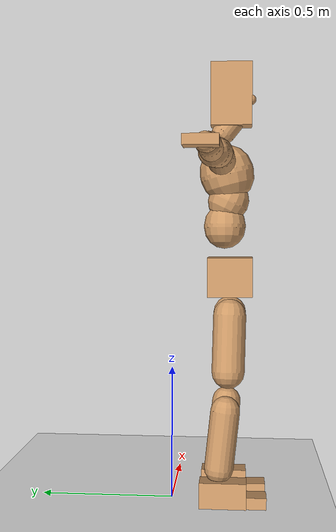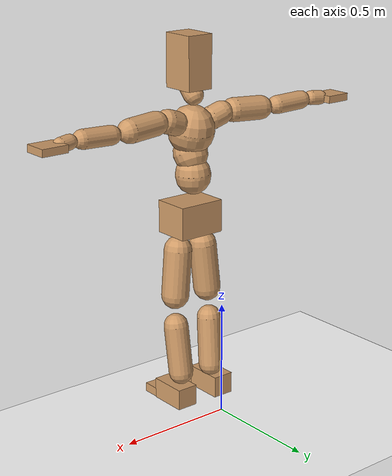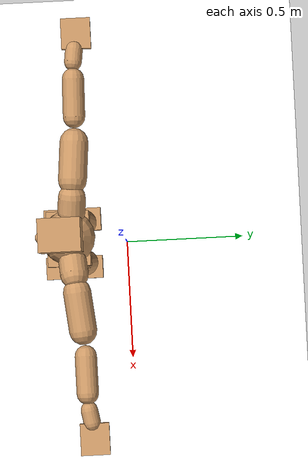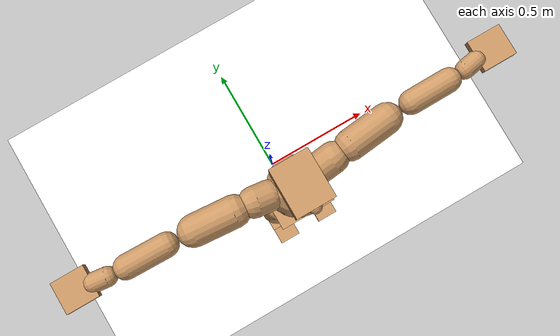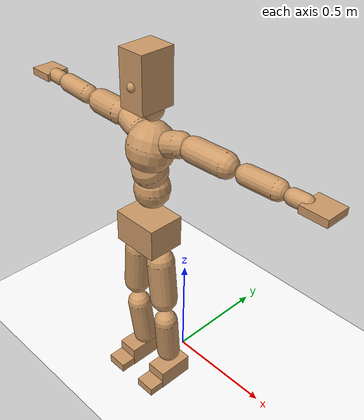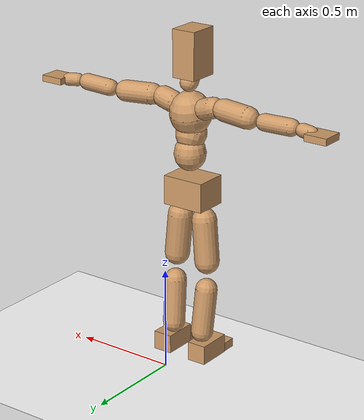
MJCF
<mujoco model="humanoid">
  <option integrator="implicitfast" />

  <visual>
    <global offwidth="1280" offheight="960" />
    <headlight active="1" ambient="0.34 0.34 0.34" diffuse="0.5 0.5 0.5" />
  </visual>

  <default>
    <joint damping="2" stiffness="2" armature="0.01" limited="true" solimplimit="0 .99 .01" />
    <geom condim="1" friction="0.7 0.005 0.0001" solimp=".99 .99 .003" solref="0.015 1" margin="0.001" rgba="0.8 0.6 .4 1" />
    <default class="smplcontact">
      <geom condim="3" friction="1. 0.005 0.0001" solref="0.015 1" solimp="0.98 0.98 0.001" priority="1" />
    </default>
    <default class="stiff_medium">
      <joint stiffness="10" />
    </default>
    <default class="stiff_medium_higher">
      <joint stiffness="50" />
    </default>
    <default class="stiff_high">
      <joint stiffness="100" />
    </default>
  </default>

  <asset>
    <texture type="skybox" builtin="gradient" rgb1="0.99 0.99 0.99" rgb2="0.608 0.828 0.892" width="100" />
    <texture builtin="flat" height="1278" mark="cross" markrgb="1 1 1" name="texgeom" random="0.01" rgb1="0.8 0.6 0.4" rgb2="0.8 0.6 0.4" type="cube" width="127" />
    <texture name="texplane" type="2d" builtin="checker" markrgb="1 1 1" rgb1="0.756 0.772 0.76" rgb2="0.6 0.6 0.6" width="100" height="100" />
    <material name="MatPlane" reflectance="0.5" texture="texplane" texrepeat="1 1" texuniform="true" />
    <material name="geom" texture="texgeom" texuniform="true" />
  </asset>

  <worldbody>
    <light name="tracking_light" pos="0 0 7" dir="0 0 -1" directional="true" cutoff="100" exponent="1" diffuse="1 1 1" specular="0.1 0.1 0.1" mode="trackcom" />
    <camera name="back" pos="0 3 2.4" xyaxes="-1 0 0 0 -1 2" mode="trackcom" />
    <camera name="side" pos="-3 0 2.4" xyaxes="0 -1 0 1 0 2" mode="trackcom" />
    <camera name="front_side" pos="-2.8 -2.8 0.8" xyaxes="0.5 -0.5 0 0.1 0.1 1" mode="trackcom" />
    <geom condim="3" name="floor" pos="0 0 0" rgba="1 1 1 1" size="100 100 .2" type="plane" material="MatPlane" />
    <body name="Pelvis" pos="-0.0018 -0.2233 0.858922" euler="90 0 0">
      <site name="Pelvis" size="0.01" />
      <freejoint name="Pelvis" />
      <geom type="box" pos="-0.0000 -0.0121 -0.0055" size="0.1069 0.0722 0.083" quat="1.0000 0.0000 0.0000 0.0000" density="3165.830099" name="Pelvis" />
      <body name="L_Hip" pos="0.0634188 -0.0834025 -0.006205">
        <joint name="L_Hip_x" type="hinge" pos="0 0 0" axis="1 0 0" stiffness="8.591054285714286" range="-160.0 22.92" class="stiff_medium" damping="12.391003329679648" armature="0.007942989088671637"/>
        <joint name="L_Hip_y" type="hinge" pos="0 0 0" axis="0 1 0" stiffness="8.606951530612246" range="-70.0 70.0" class="stiff_medium" damping="8.72311868928714" armature="0.008840853744412552"/>
        <joint name="L_Hip_z" type="hinge" pos="0 0 0" axis="0 0 1" stiffness="8.60559030612245" range="-28.65 90.0" class="stiff_medium" damping="8.26695330156144" armature="0.007941641939609336"/>
        <geom type="capsule" density="2040.816327" fromto="0.00629625 -0.0684375 -0.00082125 0.0250025 -0.273933 -0.003285" size="0.0615" name="L_Hip" />
        <body name="L_Knee" pos="0.0312987 -0.34237 -0.00410625">
          <joint name="L_Knee_x" type="hinge" pos="0 0 0" axis="1 0 0" range="-5.16 171.89" damping="6.704081834164532" armature="0.008088503736349381" stiffness="1.7364426530612245"/>
          <joint name="L_Knee_y" type="hinge" pos="0 0 0" axis="0 1 0" range="-4.58 6.88" damping="7.0499493862572375" armature="0.009000694625865247" stiffness="1.7256232857142857"/>
          <joint name="L_Knee_z" type="hinge" pos="0 0 0" axis="0 0 1" range="-6.88 4.58" damping="6.710512520158358" armature="0.008081817979239427" stiffness="1.7412147551020407"/>
          <geom type="capsule" density="1234.567901" fromto="-0.00246375 -0.072635 -0.00793875 -0.00994625 -0.29054 -0.0319375" size="0.0541" name="L_Knee" />
          <body name="L_Ankle" pos="-0.01241 -0.363175 -0.0398763">
            <joint name="L_Ankle_x" type="hinge" pos="0 0 0" axis="1 0 0" range="-45.84 45.84" class="stiff_medium" damping="5.4068680597084295" armature="0.008899315268365396" stiffness="9.12499112244898"/>
            <joint name="L_Ankle_y" type="hinge" pos="0 0 0" axis="0 1 0" range="-74.48 22.92" class="stiff_medium" damping="2.7096473304504354" armature="0.008940262758152785" stiffness="9.124997346938775"/>
            <joint name="L_Ankle_z" type="hinge" pos="0 0 0" axis="0 0 1" range="-4.58 4.58" class="stiff_medium" damping="5.499950559539303" armature="0.009208348977162611" stiffness="9.125008979591838"/>
            <geom type="box" pos="0.0212613 -0.0218088 0.0220825" size="0.0483 0.0464 0.085" quat="1.0000 0.0000 0.0000 0.0000" density="449.071558" name="L_Ankle" class="smplcontact" />
            <body name="L_Toe" pos="0.02409 -0.0509175 0.108861">
              <joint name="L_Toe_x" type="hinge" pos="0 0 0" axis="1 0 0" range="-91.67 22.92" armature="0.009363772393021141" damping="1.848721997777341" stiffness="1.824997918367347"/>
              <joint name="L_Toe_y" type="hinge" pos="0 0 0" axis="0 1 0" range="-4.58 4.58" armature="0.009551726235366816" damping="1.8671839712015337" stiffness="1.8249978571428571"/>
              <joint name="L_Toe_z" type="hinge" pos="0 0 0" axis="0 0 1" range="-4.58 4.58" armature="0.009931759686637008" damping="1.9039675117035237" stiffness="1.825"/>
              <geom type="box" pos="-0.0027375 0.00501875 0.02263" size="0.0478 0.02 0.0496" quat="1.0000 0.0000 0.0000 0.0000" density="423.206892" name="L_Toe" class="smplcontact" />
            </body>
          </body>
        </body>
      </body>
      <body name="R_Hip" pos="-0.0617762 -0.0825812 -0.00392375">
        <joint name="R_Hip_x" type="hinge" pos="0 0 0" axis="1 0 0" stiffness="8.591054285714286" range="-160.0 22.92" class="stiff_medium" damping="12.391003329679648" armature="0.007942989088671637"/>
        <joint name="R_Hip_y" type="hinge" pos="0 0 0" axis="0 1 0" stiffness="8.606951530612246" range="-70.0 70.0" class="stiff_medium" damping="8.72311868928714" armature="0.008840853744412552"/>
        <joint name="R_Hip_z" type="hinge" pos="0 0 0" axis="0 0 1" stiffness="8.60559030612245" range="-90.0 28.65" class="stiff_medium" damping="8.26695330156144" armature="0.007941641939609336"/>
        <geom type="capsule" density="2040.816327" fromto="-0.00702625 -0.0698063 -0.0016425 -0.0279225 -0.279316 -0.00647875" size="0.0606" name="R_Hip" />
        <body name="R_Knee" pos="-0.0349488 -0.349123 -0.00812125">
          <joint name="R_Knee_x" type="hinge" pos="0 0 0" axis="1 0 0" range="-5.16 171.89" damping="6.704081834164532" armature="0.008088503736349381" stiffness="1.7364426530612245"/>
          <joint name="R_Knee_y" type="hinge" pos="0 0 0" axis="0 1 0" range="-6.88 4.58" damping="7.0499493862572375" armature="0.009000694625865247" stiffness="1.7256232857142857"/>
          <joint name="R_Knee_z" type="hinge" pos="0 0 0" axis="0 0 1" range="-4.58 6.88" damping="6.710512520158358" armature="0.008081817979239427" stiffness="1.7412147551020407"/>
          <geom type="capsule" density="1234.567901" fromto="0.00292 -0.0727262 -0.00775625 0.0114975 -0.290814 -0.0308425" size="0.0541" name="R_Knee" />
          <body name="R_Ankle" pos="0.0144175 -0.36354 -0.0385987">
            <joint name="R_Ankle_x" type="hinge" pos="0 0 0" axis="1 0 0" range="-45.84 45.84" class="stiff_medium" damping="5.4068680597084295" armature="0.008899315268365396" stiffness="9.12499112244898"/>
            <joint name="R_Ankle_y" type="hinge" pos="0 0 0" axis="0 1 0" range="-22.92 74.48" class="stiff_medium" damping="2.7096473304504354" armature="0.008940262758152785" stiffness="9.124997346938775"/>
            <joint name="R_Ankle_z" type="hinge" pos="0 0 0" axis="0 0 1" range="-4.58 4.58" class="stiff_medium" damping="5.499950559539303" armature="0.009208348977162611" stiffness="9.125008979591838"/>
            <geom type="box" pos="-0.019345 -0.0158775 0.02336" size="0.0483 0.0478 0.0865" quat="1.0000 0.0000 0.0000 0.0000" density="434.700981" name="R_Ankle" class="smplcontact" />
            <body name="R_Toe" pos="-0.0231775 -0.0438912 0.112511">
              <joint name="R_Toe_x" type="hinge" pos="0 0 0" axis="1 0 0" range="-91.67 22.92" armature="0.009363772393021141" damping="1.848721997777341" stiffness="1.824997918367347"/>
              <joint name="R_Toe_y" type="hinge" pos="0 0 0" axis="0 1 0" range="-4.58 4.58" armature="0.009551726235366816" damping="1.8671839712015337" stiffness="1.8249978571428571"/>
              <joint name="R_Toe_z" type="hinge" pos="0 0 0" axis="0 0 1" range="-4.58 4.58" armature="0.009931759686637008" damping="1.9039675117035237" stiffness="1.825"/>
              <geom type="box" pos="0.0038325 0.00410625 0.0207137" size="0.0479 0.0216 0.0493" quat="1.0000 0.0000 0.0000 0.0000" density="407.384095" name="R_Toe" class="smplcontact" />
            </body>
          </body>
        </body>
      </body>
      <body name="Torso" pos="-0.0025 0.109 -0.0267">
        <joint name="Torso_x" type="hinge" pos="0 0 0" axis="1 0 0" range="-25.78 57.3" class="stiff_medium" damping="14.551725924853843" armature="0.00965213989109556" stiffness="9.750410204081632"/>
        <joint name="Torso_y" type="hinge" pos="0 0 0" axis="0 1 0" range="-57.3 57.3" class="stiff_high" damping="17.876151131723613" armature="0.008163943773499173" stiffness="97.8561306122449"/>
        <joint name="Torso_z" type="hinge" pos="0 0 0" axis="0 0 1" range="-34.38 34.38" class="stiff_high" damping="18.981013554033048" armature="0.0091436765196932" stiffness="98.50492708333333"/>
        <geom type="capsule" density="2040.816327" fromto="0.0025 0.0608 0.0005 0.003 0.0743 0.0006" size="0.0769" name="Torso" />
        <body name="Spine" pos="0.0055 0.1352 0.0011">
          <joint name="Spine_x" type="hinge" pos="0 0 0" axis="1 0 0" stiffness="9.702760612244898" range="-25.78 57.3" class="stiff_medium" damping="14.47113123031982" armature="0.009592396659237935"/>
          <joint name="Spine_y" type="hinge" pos="0 0 0" axis="0 1 0" stiffness="9.69631448979592" range="-57.3 57.3" class="stiff_high" damping="7.112167078751657" armature="0.008151119010428955"/>
          <joint name="Spine_z" type="hinge" pos="0 0 0" axis="0 0 1" stiffness="19.2891093877551" range="-34.38 34.38" class="stiff_high" damping="11.05051394417664" armature="0.008792660031315775"/>
          <geom type="capsule" density="2040.816327" fromto="0.0007 0.0238 0.0114 0.0008 0.0291 0.014" size="0.0755" name="Spine" />
          <body name="Chest" pos="0.0015 0.0529 0.0254">
            <joint name="Chest_x" type="hinge" pos="0 0 0" axis="1 0 0" stiffness="9.558727142857142" range="-25.78 57.3" class="stiff_medium" damping="14.33813483844185" armature="0.009558785975155849"/>
            <joint name="Chest_y" type="hinge" pos="0 0 0" axis="0 1 0" stiffness="9.197509361702128" range="-57.3 57.3" class="stiff_high" damping="6.925083199306545" armature="0.00814703868313777"/>
            <joint name="Chest_z" type="hinge" pos="0 0 0" axis="0 0 1" stiffness="19.248790204081633" range="-34.38 34.38" class="stiff_high" damping="10.94210510311205" armature="0.008639046836633758"/>
            <geom type="capsule" density="2040.816327" fromto="-0.0009 0.0682 -0.0173 -0.001 0.0833 -0.0212" size="0.1002" name="Chest" />
            <body name="Neck" pos="-0.0028 0.2139 -0.0429">
              <joint name="Neck_x" type="hinge" pos="0 0 0" axis="1 0 0" range="-28.65 57.3" class="stiff_medium_higher" damping="10.000000000000002" armature="0.010000000000000005" stiffness="50.0"/>
              <joint name="Neck_y" type="hinge" pos="0 0 0" axis="0 1 0" range="-40.11 40.11" class="stiff_medium_higher" damping="10.0" armature="0.01" stiffness="50.0"/>
              <joint name="Neck_z" type="hinge" pos="0 0 0" axis="0 0 1" range="-40.11 40.11" class="stiff_medium_higher" damping="10.000000000000002" armature="0.010000000000000005" stiffness="50.0"/>
              <geom type="capsule" density="1000" fromto="0.001 0.013 0.0103 0.0041 0.052 0.0411" size="0.0436" name="Neck" />
              <body name="Head" pos="0.0052 0.065 0.0513">
                <joint name="Head_x" type="hinge" pos="0 0 0" axis="1 0 0" range="-28.65 57.3" class="stiff_medium_higher" damping="2.000000000000001" armature="0.010000000000000009" stiffness="50.0"/>
                <joint name="Head_y" type="hinge" pos="0 0 0" axis="0 1 0" range="-40.11 40.11" class="stiff_medium_higher" damping="2.0" armature="0.01" stiffness="50.0"/>
                <joint name="Head_z" type="hinge" pos="0 0 0" axis="0 0 1" range="-40.11 40.11" class="stiff_medium_higher" damping="2.000000000000001" armature="0.010000000000000009" stiffness="50.0"/>
                <geom type="box" pos="-0.0042 0.0876 -0.0116" size="0.0606 0.1154 0.076" quat="1.0000 0.0000 0.0000 0.0000" density="1018.069894" name="Head" />
                <geom type="capsule" name="nose" size="0.02 0.01" pos="0 0.07 0.05" quat="1 0 0 0" mass="0" contype="0" conaffinity="0" />
              </body>
            </body>
            <body name="L_Thorax" pos="0.072496 0.111964 -0.031372">
              <joint name="L_Thorax_x" type="hinge" pos="0 0 0" axis="1 0 0" range="-10.89 4.58" class="stiff_medium_higher" damping="17.469003944602285" armature="0.008717658325447878" stiffness="43.75689081632653"/>
              <joint name="L_Thorax_y" type="hinge" pos="0 0 0" axis="0 1 0" range="-28.65 17.19" class="stiff_medium_higher" damping="16.817808145227552" armature="0.008097179599515869" stiffness="43.66314642857143"/>
              <joint name="L_Thorax_z" type="hinge" pos="0 0 0" axis="0 0 1" range="-31.51 40.11" class="stiff_medium_higher" damping="16.81742543386893" armature="0.008096619118020924" stiffness="43.66418163265307"/>
              <geom type="capsule" density="1000" fromto="0.016744 0.005612 -0.001656 0.066976 0.022448 -0.006532" size="0.0521" name="L_Thorax" />
              <body name="L_Shoulder" pos="0.08372 0.02806 -0.008188">
                <joint name="L_Shoulder_x" type="hinge" pos="0 0 0" axis="1 0 0" range="-97.4 97.4" class="stiff_medium" damping="5.316794865466252" armature="0.008958533231677692" stiffness="8.76517112244898"/>
                <joint name="L_Shoulder_y" type="hinge" pos="0 0 0" axis="0 1 0" range="-108.86 80.21" class="stiff_medium" damping="5.053913282584509" armature="0.008118231162203391" stiffness="8.739602040816328"/>
                <joint name="L_Shoulder_z" type="hinge" pos="0 0 0" axis="0 0 1" range="-97.4 85.94" class="stiff_medium" damping="5.054120112574888" armature="0.008117495029659342" stiffness="8.74111"/>
                <geom type="capsule" density="1000" fromto="0.047748 -0.002392 -0.00506 0.191084 -0.009384 -0.02024" size="0.0517" name="L_Shoulder" />
                <body name="L_Elbow" pos="0.238832 -0.011776 -0.0253">
                  <joint name="L_Elbow_x" type="hinge" pos="0 0 0" axis="1 0 0" range="-17.19 4.58" damping="4.539717898705552" armature="0.009348133790537913" stiffness="1.7636922244897963"/>
                  <joint name="L_Elbow_y" type="hinge" pos="0 0 0" axis="0 1 0" range="-180.0 17.19" damping="4.256952797329135" armature="0.00822100310712562" stiffness="1.7634487551020408"/>
                  <joint name="L_Elbow_z" type="hinge" pos="0 0 0" axis="0 0 1" range="-100.84 4.58" damping="4.2564525860911075" armature="0.008217139907945958" stiffness="1.7638632244897958"/>
                  <geom type="capsule" density="1000" fromto="0.045816 0.001656 -0.000184 0.183448 0.006624 -0.000828" size="0.0405" name="L_Elbow" />
                  <body name="L_Wrist" pos="0.229264 0.00828 -0.001104">
                    <joint name="L_Wrist_x" type="hinge" pos="0 0 0" axis="1 0 0" range="-180.0 22.92" armature="0.00947286048345945" damping="1.8535160665326487" stiffness="1.8133497346938778"/>
                    <joint name="L_Wrist_y" type="hinge" pos="0 0 0" axis="0 1 0" range="-17.19 17.19" armature="0.00857958989860997" damping="1.7620580177924448" stiffness="1.8094387346938776"/>
                    <joint name="L_Wrist_z" type="hinge" pos="0 0 0" axis="0 0 1" range="-22.92 22.92" armature="0.00852949768933052" damping="1.7576722307633488" stiffness="1.8110161836734693"/>
                    <geom type="capsule" density="1000" fromto="0.015456 -0.001472 -0.00276 0.061824 -0.00598 -0.01104" size="0.0318" name="L_Wrist" class="smplcontact" />
                    <body name="L_Hand" pos="0.07728 -0.007544 -0.013708">
                      <joint name="L_Hand_x" type="hinge" pos="0 0 0" axis="1 0 0" range="-17.19 17.19" armature="0.009933082377440275" damping="1.9119033225814588" stiffness="1.8400000000000003"/>
                      <joint name="L_Hand_y" type="hinge" pos="0 0 0" axis="0 1 0" range="-51.57 51.57" armature="0.009190723677921295" damping="1.8390721338422364" stiffness="1.8400000000000003"/>
                      <joint name="L_Hand_z" type="hinge" pos="0 0 0" axis="0 0 1" range="-91.67 91.67" armature="0.008992837823657156" damping="1.8191658305679101" stiffness="1.8400000000000003"/>
                      <geom type="box" pos="0.045356 0.00092 -0.005336" size="0.0585 0.0158 0.0538" quat="1.0000 0.0000 0.0000 0.0000" density="400.552564" name="L_Hand" class="smplcontact" />
                    </body>
                  </body>
                </body>
              </body>
            </body>
            <body name="R_Thorax" pos="-0.075256 0.109296 -0.035512">
              <joint name="R_Thorax_x" type="hinge" pos="0 0 0" axis="1 0 0" range="-10.89 4.58" class="stiff_medium_higher" damping="17.469003944602285" armature="0.008717658325447878" stiffness="43.75689081632653"/>
              <joint name="R_Thorax_y" type="hinge" pos="0 0 0" axis="0 1 0" range="-17.19 28.65" class="stiff_medium_higher" damping="16.817808145227552" armature="0.008097179599515869" stiffness="43.66314642857143"/>
              <joint name="R_Thorax_z" type="hinge" pos="0 0 0" axis="0 0 1" range="-40.11 31.51" class="stiff_medium_higher" damping="16.81742543386893" armature="0.008096619118020924" stiffness="43.66418163265307"/>
              <geom type="capsule" density="1000" fromto="-0.017664 0.00598 -0.001656 -0.070656 0.02392 -0.006716" size="0.0511" name="R_Thorax" />
              <body name="R_Shoulder" pos="-0.08832 0.029992 -0.008372">
                <joint name="R_Shoulder_x" type="hinge" pos="0 0 0" axis="1 0 0" range="-97.4 97.4" class="stiff_medium" damping="5.316794865466252" armature="0.008958533231677692" stiffness="8.76517112244898"/>
                <joint name="R_Shoulder_y" type="hinge" pos="0 0 0" axis="0 1 0" range="-80.21 108.86" class="stiff_medium" damping="5.053913282584509" armature="0.008118231162203391" stiffness="8.739602040816328"/>
                <joint name="R_Shoulder_z" type="hinge" pos="0 0 0" axis="0 0 1" range="-85.94 97.4" class="stiff_medium" damping="5.054120112574888" armature="0.008117495029659342" stiffness="8.74111"/>
                <geom type="capsule" density="1000" fromto="-0.046644 -0.002484 -0.003956 -0.18676 -0.009844 -0.015732" size="0.0531" name="R_Shoulder" />
                <body name="R_Elbow" pos="-0.233404 -0.012236 -0.019688">
                  <joint name="R_Elbow_x" type="hinge" pos="0 0 0" axis="1 0 0" range="-17.19 4.58" damping="4.539717898705552" armature="0.009348133790537913" stiffness="1.7636922244897963"/>
                  <joint name="R_Elbow_y" type="hinge" pos="0 0 0" axis="0 1 0" range="-17.19 180.0" damping="4.256952797329135" armature="0.00822100310712562" stiffness="1.7634487551020408"/>
                  <joint name="R_Elbow_z" type="hinge" pos="0 0 0" axis="0 0 1" range="-4.58 100.84" damping="4.2564525860911075" armature="0.008217139907945958" stiffness="1.7638632244897958"/>
                  <geom type="capsule" density="1000" fromto="-0.047012 0.001472 -0.001012 -0.187864 0.005704 -0.004048" size="0.0408" name="R_Elbow" />
                  <body name="R_Wrist" pos="-0.234876 0.007176 -0.005152">
                    <joint name="R_Wrist_x" type="hinge" pos="0 0 0" axis="1 0 0" range="-180.0 22.92" armature="0.00947286048345945" damping="1.8535160665326487" stiffness="1.8133497346938778"/>
                    <joint name="R_Wrist_y" type="hinge" pos="0 0 0" axis="0 1 0" range="-17.19 17.19" armature="0.00857958989860997" damping="1.7620580177924448" stiffness="1.8094387346938776"/>
                    <joint name="R_Wrist_z" type="hinge" pos="0 0 0" axis="0 0 1" range="-22.92 22.92" armature="0.00852949768933052" damping="1.7576722307633488" stiffness="1.8110161836734693"/>
                    <geom type="capsule" density="1000" fromto="-0.015548 -0.001104 -0.001932 -0.062284 -0.004508 -0.007636" size="0.0326" name="R_Wrist" class="smplcontact" />
                    <body name="R_Hand" pos="-0.077832 -0.005612 -0.009476">
                      <joint name="R_Hand_x" type="hinge" pos="0 0 0" axis="1 0 0" range="-17.19 17.19" armature="0.009933082377440275" damping="1.9119033225814588" stiffness="1.8400000000000003"/>
                      <joint name="R_Hand_y" type="hinge" pos="0 0 0" axis="0 1 0" range="-51.57 51.57" armature="0.009190723677921295" damping="1.8390721338422364" stiffness="1.8400000000000003"/>
                      <joint name="R_Hand_z" type="hinge" pos="0 0 0" axis="0 0 1" range="-91.67 91.67" armature="0.008992837823657156" damping="1.8191658305679101" stiffness="1.8400000000000003"/>
                      <geom type="box" pos="-0.042504 -0.000828 -0.007268" size="0.0569 0.0164 0.0546" quat="1.0000 0.0000 0.0000 0.0000" density="403.679611" name="R_Hand" class="smplcontact" />
                    </body>
                  </body>
                </body>
              </body>
            </body>
          </body>
        </body>
      </body>
    </body>
  </worldbody>
  <actuator>
    <general name="L_Hip_x" joint="L_Hip_x" biastype="affine" gainprm="246.84681785778625" biasprm="-184.98667063167144 -154.63897714285713 -1.6521337772906197" ctrllimited="true" ctrlrange="-1 1" forcerange="-309.27795428571426 309.27795428571426" />
    <general name="L_Hip_y" joint="L_Hip_y" biastype="affine" gainprm="189.27674988862398" biasprm="0.0 -154.9251275510204 -1.7446237378574283" ctrllimited="true" ctrlrange="-1 1" forcerange="-309.8502551020408 309.8502551020408" />
    <general name="L_Hip_z" joint="L_Hip_z" biastype="affine" gainprm="160.3866757113345" biasprm="82.93065785832593 -154.9006255102041 -1.6533906603122879" ctrllimited="true" ctrlrange="-1 1" forcerange="-309.8012510204082 309.8012510204082" />
    <general name="L_Knee_x" joint="L_Knee_x" biastype="affine" gainprm="241.46059003252023" biasprm="227.38618568834843 -156.2798387755102 -1.676020458541133" ctrllimited="true" ctrlrange="-1 1" forcerange="-312.5596775510204 312.5596775510204" />
    <general name="L_Knee_y" joint="L_Knee_y" biastype="affine" gainprm="15.531753577759872" biasprm="3.117193126426501 -155.3060957142857 -1.7624873465643094" ctrllimited="true" ctrlrange="-1 1" forcerange="-310.6121914285714 310.6121914285714" />
    <general name="L_Knee_z" joint="L_Knee_z" biastype="affine" gainprm="15.672087138653817" biasprm="-3.145357802696665 -156.70932795918367 -1.6776281300395894" ctrllimited="true" ctrlrange="-1 1" forcerange="-313.41865591836734 313.41865591836734" />
    <general name="L_Ankle_x" joint="L_Ankle_x" biastype="affine" gainprm="65.70477563042807" biasprm="0.0 -82.12492010204082 -1.8022893532361433" ctrllimited="true" ctrlrange="-1 1" forcerange="-164.24984020408164 164.24984020408164" />
    <general name="L_Ankle_y" joint="L_Ankle_y" biastype="affine" gainprm="69.80420497202704" biasprm="-36.95179474699911 -82.12497612244897 -1.8064315536336237" ctrllimited="true" ctrlrange="-1 1" forcerange="-164.24995224489794 164.24995224489794" />
    <general name="L_Ankle_z" joint="L_Ankle_z" biastype="affine" gainprm="6.564757008897893" biasprm="0.0 -82.12508081632654 -1.8333168531797677" ctrllimited="true" ctrlrange="-1 1" forcerange="-164.2501616326531 164.2501616326531" />
    <general name="L_Toe_x" joint="L_Toe_x" biastype="affine" gainprm="65.69903120915497" biasprm="-39.41712536547171 -65.69992506122449 -0.7394887991109365" ctrllimited="true" ctrlrange="-1 1" forcerange="-131.39985012244898 131.39985012244898" />
    <general name="L_Toe_y" joint="L_Toe_y" biastype="affine" gainprm="5.251794272508477" biasprm="0.0 -65.69992285714285 -0.7468735884806135" ctrllimited="true" ctrlrange="-1 1" forcerange="-131.3998457142857 131.3998457142857" />
    <general name="L_Toe_z" joint="L_Toe_z" biastype="affine" gainprm="5.251800439006057" biasprm="0.0 -65.7 -0.7615870046814095" ctrllimited="true" ctrlrange="-1 1" forcerange="-131.4 131.4" />
    <general name="R_Hip_x" joint="R_Hip_x" biastype="affine" gainprm="246.84681785778625" biasprm="-184.98667063167144 -154.63897714285713 -1.6521337772906197" ctrllimited="true" ctrlrange="-1 1" forcerange="-309.27795428571426 309.27795428571426" />
    <general name="R_Hip_y" joint="R_Hip_y" biastype="affine" gainprm="189.27674988862398" biasprm="0.0 -154.9251275510204 -1.7446237378574283" ctrllimited="true" ctrlrange="-1 1" forcerange="-309.8502551020408 309.8502551020408" />
    <general name="R_Hip_z" joint="R_Hip_z" biastype="affine" gainprm="160.3866757113345" biasprm="-82.93065785832593 -154.9006255102041 -1.6533906603122879" ctrllimited="true" ctrlrange="-1 1" forcerange="-309.8012510204082 309.8012510204082" />
    <general name="R_Knee_x" joint="R_Knee_x" biastype="affine" gainprm="241.46059003252023" biasprm="227.38618568834843 -156.2798387755102 -1.676020458541133" ctrllimited="true" ctrlrange="-1 1" forcerange="-312.5596775510204 312.5596775510204" />
    <general name="R_Knee_y" joint="R_Knee_y" biastype="affine" gainprm="15.531753577759872" biasprm="-3.117193126426501 -155.3060957142857 -1.7624873465643094" ctrllimited="true" ctrlrange="-1 1" forcerange="-310.6121914285714 310.6121914285714" />
    <general name="R_Knee_z" joint="R_Knee_z" biastype="affine" gainprm="15.672087138653817" biasprm="3.145357802696665 -156.70932795918367 -1.6776281300395894" ctrllimited="true" ctrlrange="-1 1" forcerange="-313.41865591836734 313.41865591836734" />
    <general name="R_Ankle_x" joint="R_Ankle_x" biastype="affine" gainprm="65.70477563042807" biasprm="0.0 -82.12492010204082 -1.8022893532361433" ctrllimited="true" ctrlrange="-1 1" forcerange="-164.24984020408164 164.24984020408164" />
    <general name="R_Ankle_y" joint="R_Ankle_y" biastype="affine" gainprm="69.80420497202704" biasprm="36.95179474699911 -82.12497612244897 -1.8064315536336237" ctrllimited="true" ctrlrange="-1 1" forcerange="-164.24995224489794 164.24995224489794" />
    <general name="R_Ankle_z" joint="R_Ankle_z" biastype="affine" gainprm="6.564757008897893" biasprm="0.0 -82.12508081632654 -1.8333168531797677" ctrllimited="true" ctrlrange="-1 1" forcerange="-164.2501616326531 164.2501616326531" />
    <general name="R_Toe_x" joint="R_Toe_x" biastype="affine" gainprm="65.69903120915497" biasprm="-39.41712536547171 -65.69992506122449 -0.7394887991109365" ctrllimited="true" ctrlrange="-1 1" forcerange="-131.39985012244898 131.39985012244898" />
    <general name="R_Toe_y" joint="R_Toe_y" biastype="affine" gainprm="5.251794272508477" biasprm="0.0 -65.69992285714285 -0.7468735884806135" ctrllimited="true" ctrlrange="-1 1" forcerange="-131.3998457142857 131.3998457142857" />
    <general name="R_Toe_z" joint="R_Toe_z" biastype="affine" gainprm="5.251800439006057" biasprm="0.0 -65.7 -0.7615870046814095" ctrllimited="true" ctrlrange="-1 1" forcerange="-131.4 131.4" />
    <general name="Torso_x" joint="Torso_x" biastype="affine" gainprm="169.65942412637366" biasprm="64.36765826267809 -234.00984489795917 -3.8804602466276914" ctrllimited="true" ctrlrange="-1 1" forcerange="-351.01476734693875 351.01476734693875" />
    <general name="Torso_y" joint="Torso_y" biastype="affine" gainprm="234.872013194676" biasprm="0.0 -234.85471346938775 -3.5752302263447224" ctrllimited="true" ctrlrange="-1 1" forcerange="-352.2820702040816 352.2820702040816" />
    <general name="Torso_z" joint="Torso_z" biastype="affine" gainprm="141.85754365457538" biasprm="0.0 -236.411825 -3.7962027108066096" ctrllimited="true" ctrlrange="-1 1" forcerange="-354.6177375 354.6177375" />
    <general name="Spine_x" joint="Spine_x" biastype="affine" gainprm="168.83031005407616" biasprm="64.0530978924468 -232.86625469387755 -3.858968328085285" ctrllimited="true" ctrlrange="-1 1" forcerange="-349.29938204081634 349.29938204081634" />
    <general name="Spine_y" joint="Spine_y" biastype="affine" gainprm="232.7286896118189" biasprm="0.0 -232.71154775510206 -3.5560835393758286" ctrllimited="true" ctrlrange="-1 1" forcerange="-349.0673216326531 349.0673216326531" />
    <general name="Spine_z" joint="Spine_z" biastype="affine" gainprm="138.8918178030062" biasprm="0.0 -231.46931265306122 -3.68350464805888" ctrllimited="true" ctrlrange="-1 1" forcerange="-347.2039689795918 347.2039689795918" />
    <general name="Chest_x" joint="Chest_x" biastype="affine" gainprm="166.324093909342" biasprm="63.10225613893186 -229.40945142857143 -3.8235026235844933" ctrllimited="true" ctrlrange="-1 1" forcerange="-344.11417714285716 344.11417714285716" />
    <general name="Chest_y" joint="Chest_y" biastype="affine" gainprm="220.75648471323717" biasprm="0.0 -220.74022468085107 -3.4625415996532727" ctrllimited="true" ctrlrange="-1 1" forcerange="-331.11033702127656 331.11033702127656" />
    <general name="Chest_z" joint="Chest_z" biastype="affine" gainprm="138.60149829679324" biasprm="0.0 -230.9854824489796 -3.6473683677040167" ctrllimited="true" ctrlrange="-1 1" forcerange="-346.4782236734694 346.4782236734694" />
    <general name="Neck_x" joint="Neck_x" biastype="affine" gainprm="27.00198885760427" biasprm="9.000662952534757 -36.0 -0.8000000000000003" ctrllimited="true" ctrlrange="-1 1" forcerange="-72.0 72.0" />
    <general name="Neck_y" joint="Neck_y" biastype="affine" gainprm="25.20185626709732" biasprm="0.0 -36.0 -0.8" ctrllimited="true" ctrlrange="-1 1" forcerange="-72.0 72.0" />
    <general name="Neck_z" joint="Neck_z" biastype="affine" gainprm="25.20185626709732" biasprm="0.0 -36.0 -0.8000000000000003" ctrllimited="true" ctrlrange="-1 1" forcerange="-72.0 72.0" />
    <general name="Head_x" joint="Head_x" biastype="affine" gainprm="18.001325905069514" biasprm="6.000441968356505 -24.0 -0.8000000000000004" ctrllimited="true" ctrlrange="-1 1" forcerange="-48.0 48.0" />
    <general name="Head_y" joint="Head_y" biastype="affine" gainprm="16.801237511398213" biasprm="0.0 -24.0 -0.8" ctrllimited="true" ctrlrange="-1 1" forcerange="-48.0 48.0" />
    <general name="Head_z" joint="Head_z" biastype="affine" gainprm="16.801237511398213" biasprm="0.0 -24.0 -0.8000000000000004" ctrllimited="true" ctrlrange="-1 1" forcerange="-48.0 48.0" />
    <general name="L_Thorax_x" joint="L_Thorax_x" biastype="affine" gainprm="14.17736049701205" biasprm="-5.782750144547258 -105.01653795918368 -1.397520315568183" ctrllimited="true" ctrlrange="-1 1" forcerange="-210.03307591836736 210.03307591836736" />
    <general name="L_Thorax_y" joint="L_Thorax_y" biastype="affine" gainprm="41.91970820807927" biasprm="-10.479927052019818 -104.79155142857144 -1.3454246516182042" ctrllimited="true" ctrlrange="-1 1" forcerange="-209.58310285714288 209.58310285714288" />
    <general name="L_Thorax_z" joint="L_Thorax_z" biastype="affine" gainprm="65.49652449322011" biasprm="7.864704141883452 -104.79403591836736 -1.3453940347095144" ctrllimited="true" ctrlrange="-1 1" forcerange="-209.5880718367347 209.5880718367347" />
    <general name="L_Shoulder_x" joint="L_Shoulder_x" biastype="affine" gainprm="71.52172180905013" biasprm="0.0 -42.072821387755106 -1.417811964124334" ctrllimited="true" ctrlrange="-1 1" forcerange="-84.14564277551021 84.14564277551021" />
    <general name="L_Shoulder_y" joint="L_Shoulder_y" biastype="affine" gainprm="69.2154251597475" biasprm="-10.48829497448969 -41.95008979591837 -1.3477102086892025" ctrllimited="true" ctrlrange="-1 1" forcerange="-83.90017959183675 83.90017959183675" />
    <general name="L_Shoulder_z" joint="L_Shoulder_z" biastype="affine" gainprm="67.12934688115715" biasprm="-4.196041863521668 -41.957328000000004 -1.3477653633533038" ctrllimited="true" ctrlrange="-1 1" forcerange="-83.91465600000001 83.91465600000001" />
    <general name="L_Elbow_x" joint="L_Elbow_x" biastype="affine" gainprm="12.062327120111322" biasprm="-6.98695199745539 -63.49292008163267 -0.7263548637928884" ctrllimited="true" ctrlrange="-1 1" forcerange="-126.98584016326534 126.98584016326534" />
    <general name="L_Elbow_y" joint="L_Elbow_y" biastype="affine" gainprm="109.24400249943575" biasprm="-90.19735304494719 -63.484155183673465 -0.6811124475726618" ctrllimited="true" ctrlrange="-1 1" forcerange="-126.96831036734693 126.96831036734693" />
    <general name="L_Elbow_z" joint="L_Elbow_z" biastype="affine" gainprm="58.416803623356394" biasprm="-53.340936414193585 -63.49907608163265 -0.6810324137745772" ctrllimited="true" ctrlrange="-1 1" forcerange="-126.9981521632653 126.9981521632653" />
    <general name="L_Wrist_x" joint="L_Wrist_x" biastype="affine" gainprm="19.266598584982916" biasprm="-14.914238644436805 -10.880098408163267 -0.7414064266130596" ctrllimited="true" ctrlrange="-1 1" forcerange="-21.760196816326534 21.760196816326534" />
    <general name="L_Wrist_y" joint="L_Wrist_y" biastype="affine" gainprm="3.2572296368481113" biasprm="0.0 -10.856632408163266 -0.704823207116978" ctrllimited="true" ctrlrange="-1 1" forcerange="-21.713264816326532 21.713264816326532" />
    <general name="L_Wrist_z" joint="L_Wrist_z" biastype="affine" gainprm="4.346759005554848" biasprm="0.0 -10.866097102040815 -0.7030688923053395" ctrllimited="true" ctrlrange="-1 1" forcerange="-21.73219420408163 21.73219420408163" />
    <general name="L_Hand_x" joint="L_Hand_x" biastype="affine" gainprm="3.312243966532792" biasprm="0.0 -11.040000000000003 -0.7647613290325835" ctrllimited="true" ctrlrange="-1 1" forcerange="-22.080000000000005 22.080000000000005" />
    <general name="L_Hand_y" joint="L_Hand_y" biastype="affine" gainprm="9.936731899598373" biasprm="0.0 -11.040000000000003 -0.7356288535368947" ctrllimited="true" ctrlrange="-1 1" forcerange="-22.080000000000005 22.080000000000005" />
    <general name="L_Hand_z" joint="L_Hand_z" biastype="affine" gainprm="17.66337431134735" biasprm="0.0 -11.040000000000003 -0.7276663322271641" ctrllimited="true" ctrlrange="-1 1" forcerange="-22.080000000000005 22.080000000000005" />
    <general name="R_Thorax_x" joint="R_Thorax_x" biastype="affine" gainprm="14.17736049701205" biasprm="-5.782750144547258 -105.01653795918368 -1.397520315568183" ctrllimited="true" ctrlrange="-1 1" forcerange="-210.03307591836736 210.03307591836736" />
    <general name="R_Thorax_y" joint="R_Thorax_y" biastype="affine" gainprm="41.91970820807927" biasprm="10.479927052019812 -104.79155142857144 -1.3454246516182042" ctrllimited="true" ctrlrange="-1 1" forcerange="-209.58310285714288 209.58310285714288" />
    <general name="R_Thorax_z" joint="R_Thorax_z" biastype="affine" gainprm="65.49652449322011" biasprm="-7.864704141883452 -104.79403591836736 -1.3453940347095144" ctrllimited="true" ctrlrange="-1 1" forcerange="-209.5880718367347 209.5880718367347" />
    <general name="R_Shoulder_x" joint="R_Shoulder_x" biastype="affine" gainprm="71.52172180905013" biasprm="0.0 -42.072821387755106 -1.417811964124334" ctrllimited="true" ctrlrange="-1 1" forcerange="-84.14564277551021 84.14564277551021" />
    <general name="R_Shoulder_y" joint="R_Shoulder_y" biastype="affine" gainprm="69.2154251597475" biasprm="10.48829497448969 -41.95008979591837 -1.3477102086892025" ctrllimited="true" ctrlrange="-1 1" forcerange="-83.90017959183675 83.90017959183675" />
    <general name="R_Shoulder_z" joint="R_Shoulder_z" biastype="affine" gainprm="67.12934688115715" biasprm="4.196041863521659 -41.957328000000004 -1.3477653633533038" ctrllimited="true" ctrlrange="-1 1" forcerange="-83.91465600000001 83.91465600000001" />
    <general name="R_Elbow_x" joint="R_Elbow_x" biastype="affine" gainprm="12.062327120111322" biasprm="-6.98695199745539 -63.49292008163267 -0.7263548637928884" ctrllimited="true" ctrlrange="-1 1" forcerange="-126.98584016326534 126.98584016326534" />
    <general name="R_Elbow_y" joint="R_Elbow_y" biastype="affine" gainprm="109.24400249943575" biasprm="90.19735304494719 -63.484155183673465 -0.6811124475726618" ctrllimited="true" ctrlrange="-1 1" forcerange="-126.96831036734693 126.96831036734693" />
    <general name="R_Elbow_z" joint="R_Elbow_z" biastype="affine" gainprm="58.416803623356394" biasprm="53.34093641419358 -63.49907608163265 -0.6810324137745772" ctrllimited="true" ctrlrange="-1 1" forcerange="-126.9981521632653 126.9981521632653" />
    <general name="R_Wrist_x" joint="R_Wrist_x" biastype="affine" gainprm="19.266598584982916" biasprm="-14.914238644436805 -10.880098408163267 -0.7414064266130596" ctrllimited="true" ctrlrange="-1 1" forcerange="-21.760196816326534 21.760196816326534" />
    <general name="R_Wrist_y" joint="R_Wrist_y" biastype="affine" gainprm="3.2572296368481113" biasprm="0.0 -10.856632408163266 -0.704823207116978" ctrllimited="true" ctrlrange="-1 1" forcerange="-21.713264816326532 21.713264816326532" />
    <general name="R_Wrist_z" joint="R_Wrist_z" biastype="affine" gainprm="4.346759005554848" biasprm="0.0 -10.866097102040815 -0.7030688923053395" ctrllimited="true" ctrlrange="-1 1" forcerange="-21.73219420408163 21.73219420408163" />
    <general name="R_Hand_x" joint="R_Hand_x" biastype="affine" gainprm="3.312243966532792" biasprm="0.0 -11.040000000000003 -0.7647613290325835" ctrllimited="true" ctrlrange="-1 1" forcerange="-22.080000000000005 22.080000000000005" />
    <general name="R_Hand_y" joint="R_Hand_y" biastype="affine" gainprm="9.936731899598373" biasprm="0.0 -11.040000000000003 -0.7356288535368947" ctrllimited="true" ctrlrange="-1 1" forcerange="-22.080000000000005 22.080000000000005" />
    <general name="R_Hand_z" joint="R_Hand_z" biastype="affine" gainprm="17.66337431134735" biasprm="0.0 -11.040000000000003 -0.7276663322271641" ctrllimited="true" ctrlrange="-1 1" forcerange="-22.080000000000005 22.080000000000005" />
  </actuator>
  <contact>
    <exclude body1="Torso" body2="Chest" />
    <exclude body1="Head" body2="Chest" />
    <exclude body1="R_Knee" body2="R_Toe" />
    <exclude body1="R_Knee" body2="L_Ankle" />
    <exclude body1="R_Knee" body2="L_Toe" />
    <exclude body1="L_Knee" body2="L_Toe" />
    <exclude body1="L_Knee" body2="R_Ankle" />
    <exclude body1="L_Knee" body2="R_Toe" />
    <exclude body1="L_Shoulder" body2="Chest" />
    <exclude body1="R_Shoulder" body2="Chest" />
  </contact>
  <sensor>
    <framelinvel name="sensor_Pelvis_framelinvel" objtype="xbody" objname="Pelvis" />
    <framelinvel name="sensor_L_Hip_framelinvel" objtype="xbody" objname="L_Hip" />
    <framelinvel name="sensor_L_Knee_framelinvel" objtype="xbody" objname="L_Knee" />
    <framelinvel name="sensor_L_Ankle_framelinvel" objtype="xbody" objname="L_Ankle" />
    <framelinvel name="sensor_L_Toe_framelinvel" objtype="xbody" objname="L_Toe" />
    <framelinvel name="sensor_R_Hip_framelinvel" objtype="xbody" objname="R_Hip" />
    <framelinvel name="sensor_R_Knee_framelinvel" objtype="xbody" objname="R_Knee" />
    <framelinvel name="sensor_R_Ankle_framelinvel" objtype="xbody" objname="R_Ankle" />
    <framelinvel name="sensor_R_Toe_framelinvel" objtype="xbody" objname="R_Toe" />
    <framelinvel name="sensor_Torso_framelinvel" objtype="xbody" objname="Torso" />
    <framelinvel name="sensor_Spine_framelinvel" objtype="xbody" objname="Spine" />
    <framelinvel name="sensor_Chest_framelinvel" objtype="xbody" objname="Chest" />
    <framelinvel name="sensor_Neck_framelinvel" objtype="xbody" objname="Neck" />
    <framelinvel name="sensor_Head_framelinvel" objtype="xbody" objname="Head" />
    <framelinvel name="sensor_L_Thorax_framelinvel" objtype="xbody" objname="L_Thorax" />
    <framelinvel name="sensor_L_Shoulder_framelinvel" objtype="xbody" objname="L_Shoulder" />
    <framelinvel name="sensor_L_Elbow_framelinvel" objtype="xbody" objname="L_Elbow" />
    <framelinvel name="sensor_L_Wrist_framelinvel" objtype="xbody" objname="L_Wrist" />
    <framelinvel name="sensor_L_Hand_framelinvel" objtype="xbody" objname="L_Hand" />
    <framelinvel name="sensor_R_Thorax_framelinvel" objtype="xbody" objname="R_Thorax" />
    <framelinvel name="sensor_R_Shoulder_framelinvel" objtype="xbody" objname="R_Shoulder" />
    <framelinvel name="sensor_R_Elbow_framelinvel" objtype="xbody" objname="R_Elbow" />
    <framelinvel name="sensor_R_Wrist_framelinvel" objtype="xbody" objname="R_Wrist" />
    <framelinvel name="sensor_R_Hand_framelinvel" objtype="xbody" objname="R_Hand" />
    <frameangvel name="sensor_Pelvis_frameangvel" objtype="xbody" objname="Pelvis" />
    <frameangvel name="sensor_L_Hip_frameangvel" objtype="xbody" objname="L_Hip" />
    <frameangvel name="sensor_L_Knee_frameangvel" objtype="xbody" objname="L_Knee" />
    <frameangvel name="sensor_L_Ankle_frameangvel" objtype="xbody" objname="L_Ankle" />
    <frameangvel name="sensor_L_Toe_frameangvel" objtype="xbody" objname="L_Toe" />
    <frameangvel name="sensor_R_Hip_frameangvel" objtype="xbody" objname="R_Hip" />
    <frameangvel name="sensor_R_Knee_frameangvel" objtype="xbody" objname="R_Knee" />
    <frameangvel name="sensor_R_Ankle_frameangvel" objtype="xbody" objname="R_Ankle" />
    <frameangvel name="sensor_R_Toe_frameangvel" objtype="xbody" objname="R_Toe" />
    <frameangvel name="sensor_Torso_frameangvel" objtype="xbody" objname="Torso" />
    <frameangvel name="sensor_Spine_frameangvel" objtype="xbody" objname="Spine" />
    <frameangvel name="sensor_Chest_frameangvel" objtype="xbody" objname="Chest" />
    <frameangvel name="sensor_Neck_frameangvel" objtype="xbody" objname="Neck" />
    <frameangvel name="sensor_Head_frameangvel" objtype="xbody" objname="Head" />
    <frameangvel name="sensor_L_Thorax_frameangvel" objtype="xbody" objname="L_Thorax" />
    <frameangvel name="sensor_L_Shoulder_frameangvel" objtype="xbody" objname="L_Shoulder" />
    <frameangvel name="sensor_L_Elbow_frameangvel" objtype="xbody" objname="L_Elbow" />
    <frameangvel name="sensor_L_Wrist_frameangvel" objtype="xbody" objname="L_Wrist" />
    <frameangvel name="sensor_L_Hand_frameangvel" objtype="xbody" objname="L_Hand" />
    <frameangvel name="sensor_R_Thorax_frameangvel" objtype="xbody" objname="R_Thorax" />
    <frameangvel name="sensor_R_Shoulder_frameangvel" objtype="xbody" objname="R_Shoulder" />
    <frameangvel name="sensor_R_Elbow_frameangvel" objtype="xbody" objname="R_Elbow" />
    <frameangvel name="sensor_R_Wrist_frameangvel" objtype="xbody" objname="R_Wrist" />
    <frameangvel name="sensor_R_Hand_frameangvel" objtype="xbody" objname="R_Hand" />
    <subtreelinvel name="Chest_subtreelinvel" body="Chest" />
    <gyro name="Pelvis_gyro" site="Pelvis" />
  </sensor>
</mujoco>
